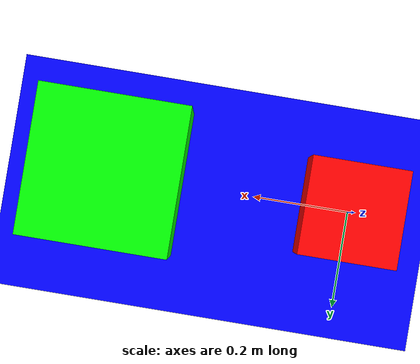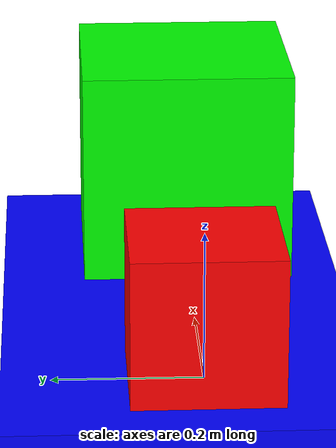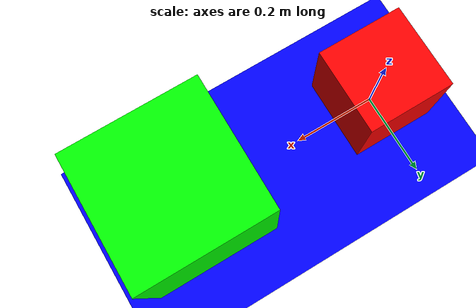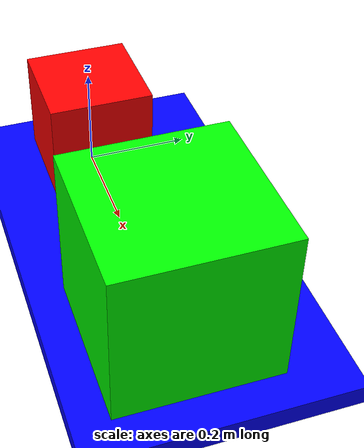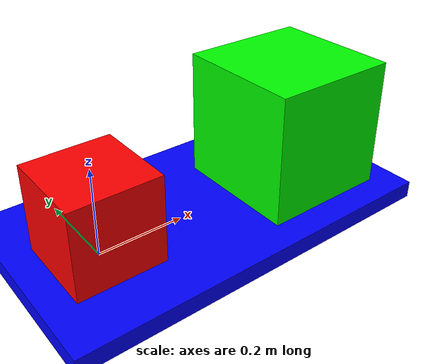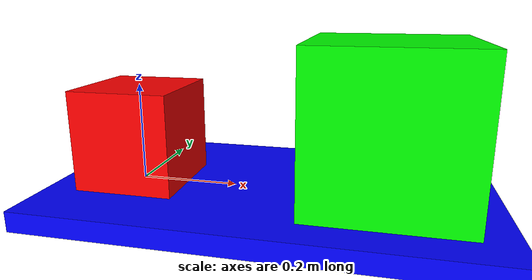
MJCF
<mujoco>
    <worldbody>
        <light diffuse=".5 .5 .5" pos="1 1 10" dir="-0.1 -0.1 -1" />
        <body name="body1" pos="0 0 0.1">
            <joint type="slide" name='slider' axis="1 0 0"/>
            <geom type="box" name='box' size="0.1 0.1 0.1" rgba="1 0 0 1" group="0"/>
        </body>

        <body name="body3" pos="0.5 0 0.15">
            <joint type="slide" name='slider2' axis="1 0 0"/>
            <geom type="box" name='box2' size="0.15 0.15 0.15" rgba="0 1 0 1" group="1"/>
        </body>

        <body name="body2" pos="0 0 -0.02">
            <geom name='ground' type="box" size="1 1 0.02 " pos="0 0 0" euler="0 0 0" rgba="0 0 1 1" group="2"/>
        </body>
    </worldbody>
</mujoco>
